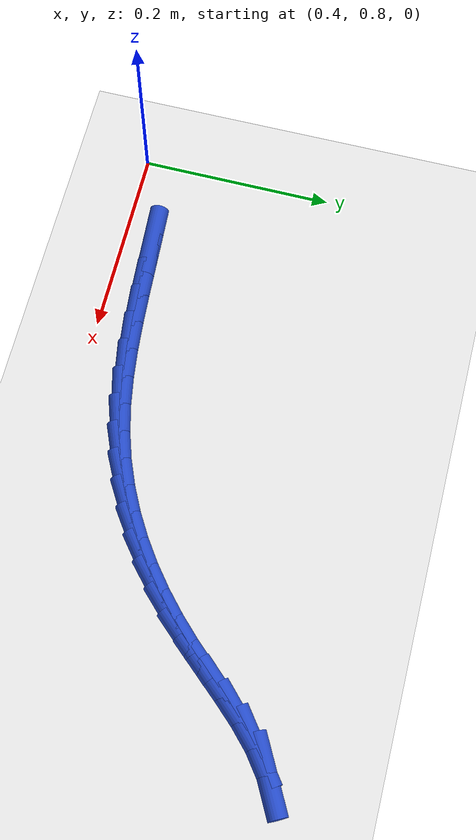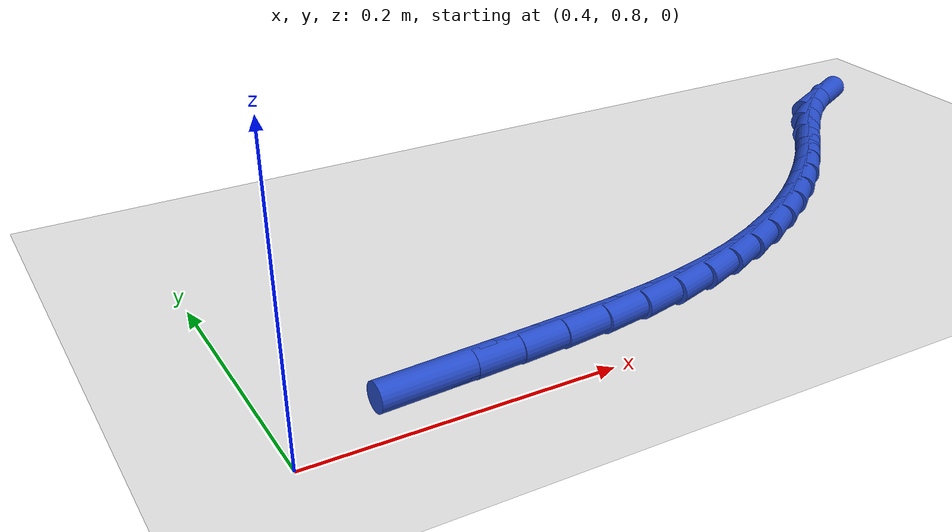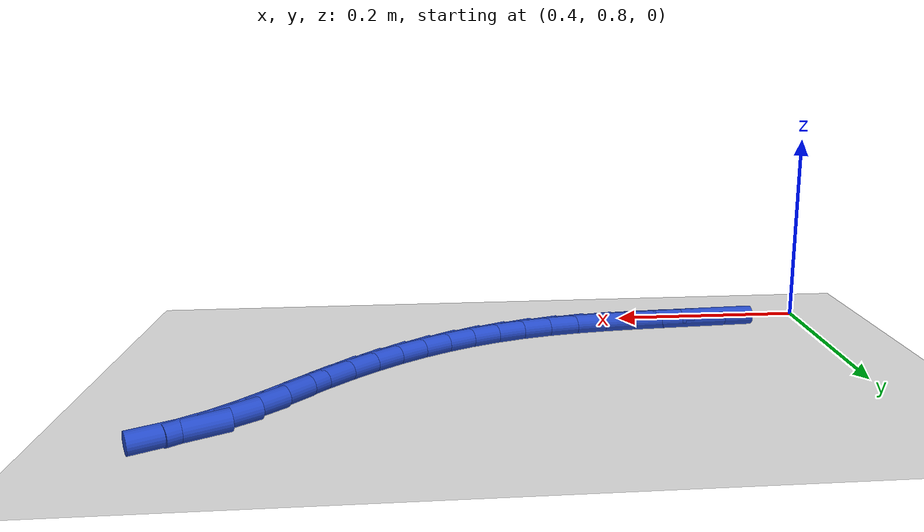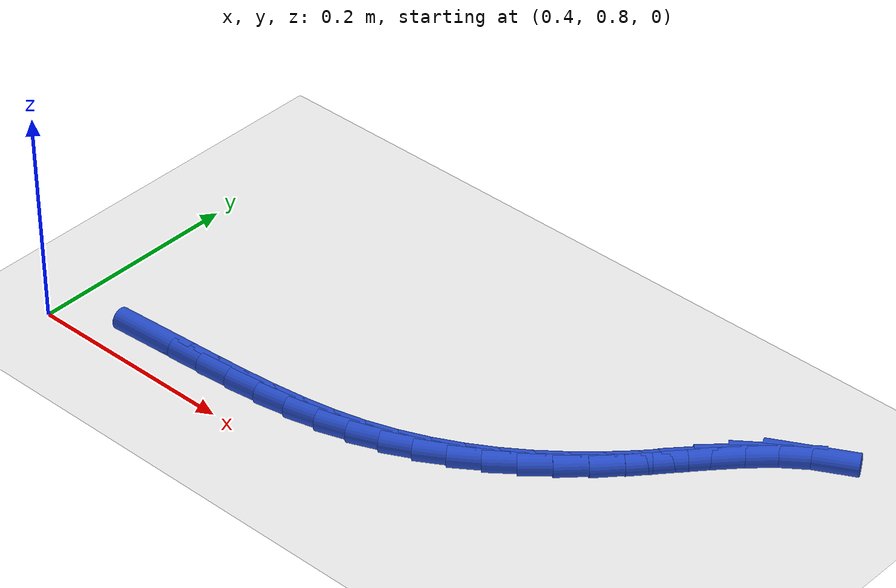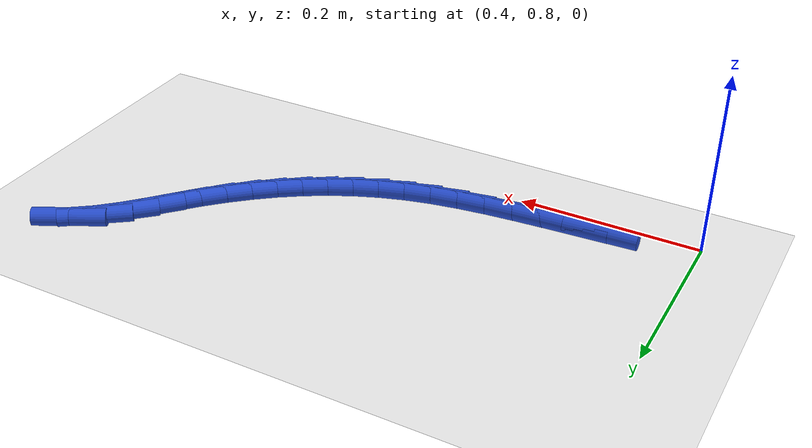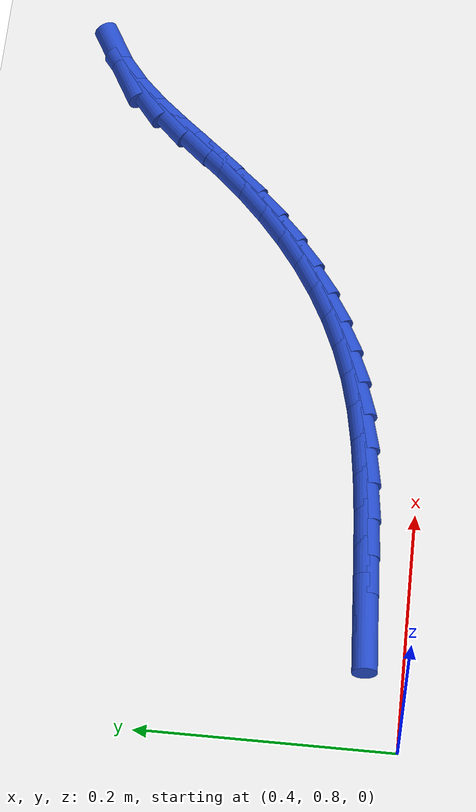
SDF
<sdf version="1.6">
 <world name="default">
  <model name="ground_plane">
   <static>1</static>
   <link name="link">
    <collision name="collision">
     <geometry><plane><normal>0 0 1</normal><size>100 100</size></plane></geometry>
     <surface><friction><ode><mu>100</mu><mu2>50</mu2></ode></friction></surface>
    </collision>
    <visual name="visual">
     <cast_shadows>0</cast_shadows>
     <geometry><plane><normal>0 0 1</normal><size>100 100</size></plane></geometry>
     <material>
      <script><uri>file://media/materials/scripts/gazebo.material</uri><name>Gazebo/WhiteGlow</name></script>
     </material>
    </visual>
   </link>
  </model>
  <model name="line">
   <link name="link_38">
    <pose>0.4984980822095961 0.831966997265431 0.01 0 1.57 0.06261114056649036</pose>
    <collision name="collision">
     <geometry><cylinder><radius>0.01</radius><length>0.08</length></cylinder></geometry>
    </collision>
    <visual name="visual">
     <material>
      <script><name>Gazebo/Blue</name><uri>file://media/materials/scripts/gazebo.material</uri></script>
     </material>
     <geometry><cylinder><radius>0.01</radius><length>0.08</length></cylinder></geometry>
    </visual>
   </link>
   <link name="link_39">
    <pose>0.5298084360436934 0.8339299399142206 0.01 0 1.57 0.061883094828041746</pose>
    <collision name="collision">
     <geometry><cylinder><radius>0.01</radius><length>0.08</length></cylinder></geometry>
    </collision>
    <visual name="visual">
     <material>
      <script><name>Gazebo/Blue</name><uri>file://media/materials/scripts/gazebo.material</uri></script>
     </material>
     <geometry><cylinder><radius>0.01</radius><length>0.08</length></cylinder></geometry>
    </visual>
   </link>
   <link name="link_40">
    <pose>0.5614087699267569 0.835887966443082 0.01 0 1.57 0.07286152703590727</pose>
    <collision name="collision">
     <geometry><cylinder><radius>0.01</radius><length>0.08</length></cylinder></geometry>
    </collision>
    <visual name="visual">
     <material>
      <script><name>Gazebo/Blue</name><uri>file://media/materials/scripts/gazebo.material</uri></script>
     </material>
     <geometry><cylinder><radius>0.01</radius><length>0.08</length></cylinder></geometry>
    </visual>
   </link>
   <link name="link_41">
    <pose>0.5930218450377658 0.8381954281016423 0.01 0 1.57 0.09576311542898577</pose>
    <collision name="collision">
     <geometry><cylinder><radius>0.01</radius><length>0.08</length></cylinder></geometry>
    </collision>
    <visual name="visual">
     <material>
      <script><name>Gazebo/Blue</name><uri>file://media/materials/scripts/gazebo.material</uri></script>
     </material>
     <geometry><cylinder><radius>0.01</radius><length>0.08</length></cylinder></geometry>
    </visual>
   </link>
   <link name="link_42">
    <pose>0.6243704225556992 0.8412066761395286 0.01 0 1.57 0.1313332283863889</pose>
    <collision name="collision">
     <geometry><cylinder><radius>0.01</radius><length>0.08</length></cylinder></geometry>
    </collision>
    <visual name="visual">
     <material>
      <script><name>Gazebo/Blue</name><uri>file://media/materials/scripts/gazebo.material</uri></script>
     </material>
     <geometry><cylinder><radius>0.01</radius><length>0.08</length></cylinder></geometry>
    </visual>
   </link>
   <link name="link_43">
    <pose>0.6551772636595357 0.8452760618063675 0.01 0 1.57 0.18080672545606608</pose>
    <collision name="collision">
     <geometry><cylinder><radius>0.01</radius><length>0.08</length></cylinder></geometry>
    </collision>
    <visual name="visual">
     <material>
      <script><name>Gazebo/Blue</name><uri>file://media/materials/scripts/gazebo.material</uri></script>
     </material>
     <geometry><cylinder><radius>0.01</radius><length>0.08</length></cylinder></geometry>
    </visual>
   </link>
   <link name="link_44">
    <pose>0.6851651295282543 0.8507579363517863 0.01 0 1.57 0.2457385323780613</pose>
    <collision name="collision">
     <geometry><cylinder><radius>0.01</radius><length>0.08</length></cylinder></geometry>
    </collision>
    <visual name="visual">
     <material>
      <script><name>Gazebo/Blue</name><uri>file://media/materials/scripts/gazebo.material</uri></script>
     </material>
     <geometry><cylinder><radius>0.01</radius><length>0.08</length></cylinder></geometry>
    </visual>
   </link>
   <link name="link_45">
    <pose>0.7140582869654187 0.858004557358594 0.01 0 1.57 0.3215207651898742</pose>
    <collision name="collision">
     <geometry><cylinder><radius>0.01</radius><length>0.08</length></cylinder></geometry>
    </collision>
    <visual name="visual">
     <material>
      <script><name>Gazebo/Blue</name><uri>file://media/materials/scripts/gazebo.material</uri></script>
     </material>
     <geometry><cylinder><radius>0.01</radius><length>0.08</length></cylinder></geometry>
    </visual>
   </link>
   <link name="link_46">
    <pose>0.7416949551399105 0.8672097243925659 0.01 0 1.57 0.3975840211138584</pose>
    <collision name="collision">
     <geometry><cylinder><radius>0.01</radius><length>0.08</length></cylinder></geometry>
    </collision>
    <visual name="visual">
     <material>
      <script><name>Gazebo/Blue</name><uri>file://media/materials/scripts/gazebo.material</uri></script>
     </material>
     <geometry><cylinder><radius>0.01</radius><length>0.08</length></cylinder></geometry>
    </visual>
   </link>
   <link name="link_47">
    <pose>0.7681050899315821 0.8783006149188444 0.01 0 1.57 0.4719273806635027</pose>
    <collision name="collision">
     <geometry><cylinder><radius>0.01</radius><length>0.08</length></cylinder></geometry>
    </collision>
    <visual name="visual">
     <material>
      <script><name>Gazebo/Blue</name><uri>file://media/materials/scripts/gazebo.material</uri></script>
     </material>
     <geometry><cylinder><radius>0.01</radius><length>0.08</length></cylinder></geometry>
    </visual>
   </link>
   <link name="link_48">
    <pose>0.7933370426414579 0.8911788263985657 0.01 0 1.57 0.5436426621191703</pose>
    <collision name="collision">
     <geometry><cylinder><radius>0.01</radius><length>0.08</length></cylinder></geometry>
    </collision>
    <visual name="visual">
     <material>
      <script><name>Gazebo/Blue</name><uri>file://media/materials/scripts/gazebo.material</uri></script>
     </material>
     <geometry><cylinder><radius>0.01</radius><length>0.08</length></cylinder></geometry>
    </visual>
   </link>
   <link name="link_49">
    <pose>0.8174391645705625 0.9057459562928657 0.01 0 1.57 0.6119841869753357</pose>
    <collision name="collision">
     <geometry><cylinder><radius>0.01</radius><length>0.08</length></cylinder></geometry>
    </collision>
    <visual name="visual">
     <material>
      <script><name>Gazebo/Blue</name><uri>file://media/materials/scripts/gazebo.material</uri></script>
     </material>
     <geometry><cylinder><radius>0.01</radius><length>0.08</length></cylinder></geometry>
    </visual>
   </link>
   <link name="link_50">
    <pose>0.8404598070199204 0.9219036020628806 0.01 0 1.57 0.6763956657879273</pose>
    <collision name="collision">
     <geometry><cylinder><radius>0.01</radius><length>0.08</length></cylinder></geometry>
    </collision>
    <visual name="visual">
     <material>
      <script><name>Gazebo/Blue</name><uri>file://media/materials/scripts/gazebo.material</uri></script>
     </material>
     <geometry><cylinder><radius>0.01</radius><length>0.08</length></cylinder></geometry>
    </visual>
   </link>
   <link name="link_51">
    <pose>0.8624473212905558 0.9395533611697462 0.01 0 1.57 0.7365119746632101</pose>
    <collision name="collision">
     <geometry><cylinder><radius>0.01</radius><length>0.08</length></cylinder></geometry>
    </collision>
    <visual name="visual">
     <material>
      <script><name>Gazebo/Blue</name><uri>file://media/materials/scripts/gazebo.material</uri></script>
     </material>
     <geometry><cylinder><radius>0.01</radius><length>0.08</length></cylinder></geometry>
    </visual>
   </link>
   <link name="link_52">
    <pose>0.883450058683493 0.9585968310745987 0.01 0 1.57 0.7921414281198801</pose>
    <collision name="collision">
     <geometry><cylinder><radius>0.01</radius><length>0.08</length></cylinder></geometry>
    </collision>
    <visual name="visual">
     <material>
      <script><name>Gazebo/Blue</name><uri>file://media/materials/scripts/gazebo.material</uri></script>
     </material>
     <geometry><cylinder><radius>0.01</radius><length>0.08</length></cylinder></geometry>
    </visual>
   </link>
   <link name="link_53">
    <pose>0.9035163704997567 0.978935609238574 0.01 0 1.57 0.8401408423497367</pose>
    <collision name="collision">
     <geometry><cylinder><radius>0.01</radius><length>0.08</length></cylinder></geometry>
    </collision>
    <visual name="visual">
     <material>
      <script><name>Gazebo/Blue</name><uri>file://media/materials/scripts/gazebo.material</uri></script>
     </material>
     <geometry><cylinder><radius>0.01</radius><length>0.08</length></cylinder></geometry>
    </visual>
   </link>
   <link name="link_54">
    <pose>0.9227425897094619 1.000391080456706 0.01 0 1.57 0.8572560529921394</pose>
    <collision name="collision">
     <geometry><cylinder><radius>0.01</radius><length>0.08</length></cylinder></geometry>
    </collision>
    <visual name="visual">
     <material>
      <script><name>Gazebo/Blue</name><uri>file://media/materials/scripts/gazebo.material</uri></script>
     </material>
     <geometry><cylinder><radius>0.01</radius><length>0.08</length></cylinder></geometry>
    </visual>
   </link>
   <link name="link_55">
    <pose>0.9415943281046684 1.0221672929576888 0.01 0 1.57 0.8327134173107609</pose>
    <collision name="collision">
     <geometry><cylinder><radius>0.01</radius><length>0.08</length></cylinder></geometry>
    </collision>
    <visual name="visual">
     <material>
      <script><name>Gazebo/Blue</name><uri>file://media/materials/scripts/gazebo.material</uri></script>
     </material>
     <geometry><cylinder><radius>0.01</radius><length>0.08</length></cylinder></geometry>
    </visual>
   </link>
   <link name="link_56">
    <pose>0.9607086268942482 1.0431817103050425 0.01 0 1.57 0.763802134814174</pose>
    <collision name="collision">
     <geometry><cylinder><radius>0.01</radius><length>0.08</length></cylinder></geometry>
    </collision>
    <visual name="visual">
     <material>
      <script><name>Gazebo/Blue</name><uri>file://media/materials/scripts/gazebo.material</uri></script>
     </material>
     <geometry><cylinder><radius>0.01</radius><length>0.08</length></cylinder></geometry>
    </visual>
   </link>
   <link name="link_57">
    <pose>0.9807234711435144 1.0623502181838353 0.01 0 1.57 0.6457214837203281</pose>
    <collision name="collision">
     <geometry><cylinder><radius>0.01</radius><length>0.08</length></cylinder></geometry>
    </collision>
    <visual name="visual">
     <material>
      <script><name>Gazebo/Blue</name><uri>file://media/materials/scripts/gazebo.material</uri></script>
     </material>
     <geometry><cylinder><radius>0.01</radius><length>0.08</length></cylinder></geometry>
    </visual>
   </link>
   <link name="link_58">
    <pose>1.0022762501247238 1.0785897010984042 0.01 0 1.57 0.49282602592838165</pose>
    <collision name="collision">
     <geometry><cylinder><radius>0.01</radius><length>0.08</length></cylinder></geometry>
    </collision>
    <visual name="visual">
     <material>
      <script><name>Gazebo/Blue</name><uri>file://media/materials/scripts/gazebo.material</uri></script>
     </material>
     <geometry><cylinder><radius>0.01</radius><length>0.08</length></cylinder></geometry>
    </visual>
   </link>
  </model>
 </world>
</sdf>
